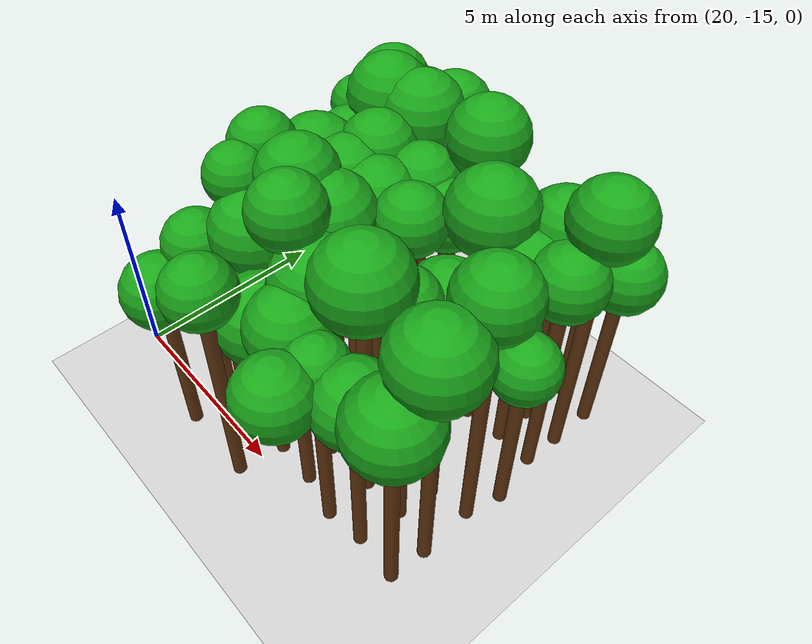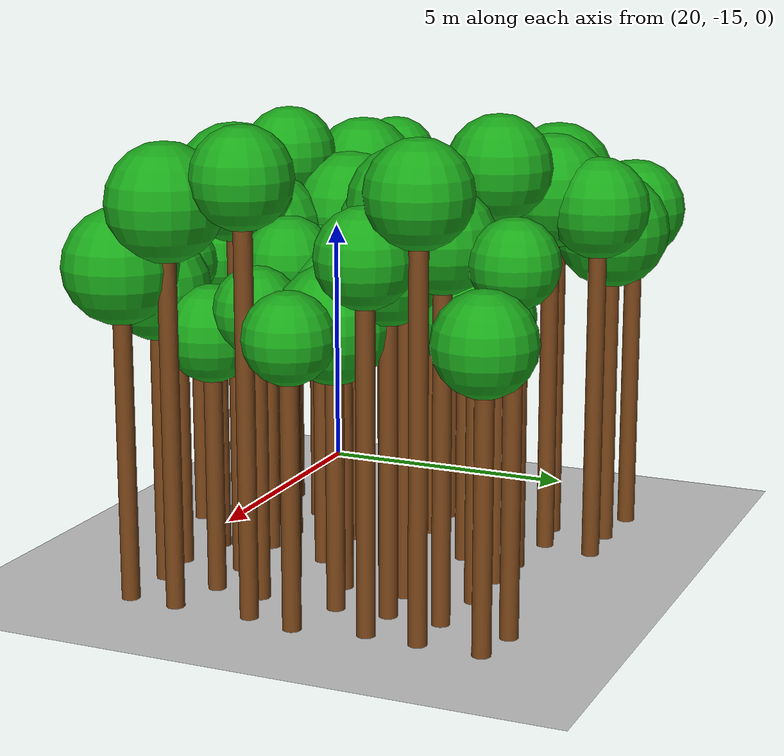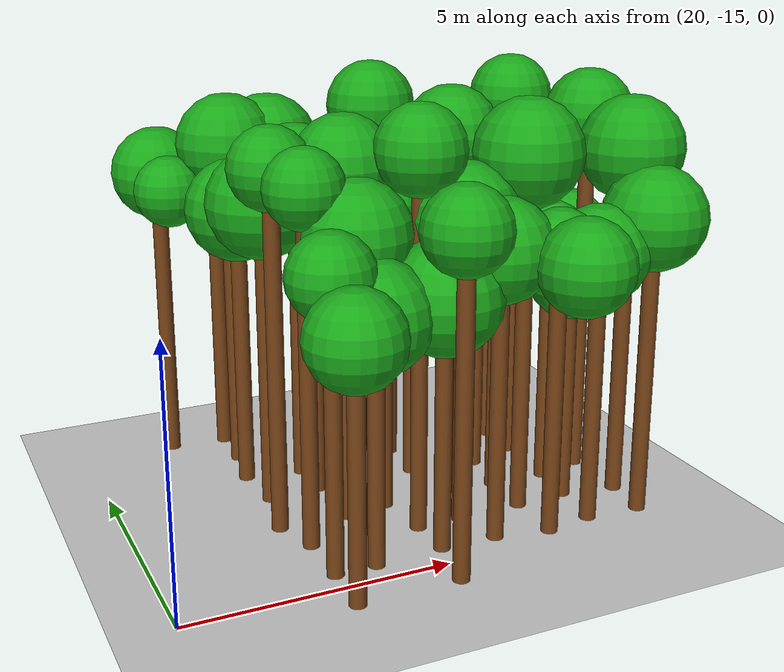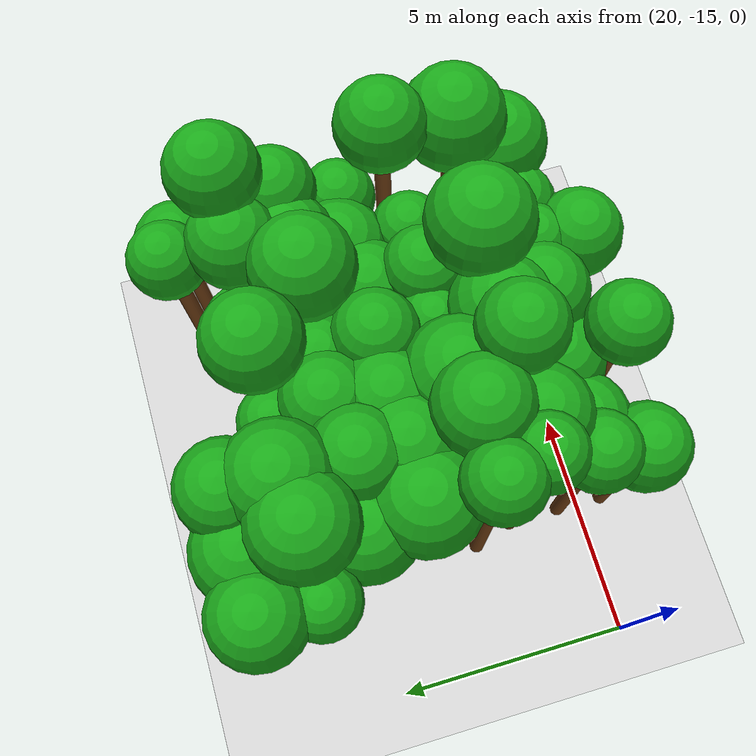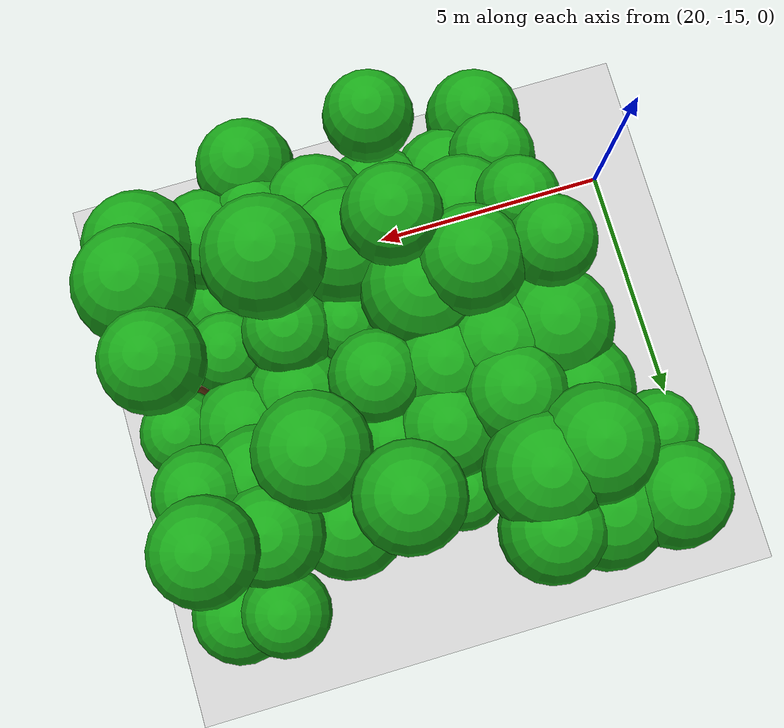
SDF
<sdf version="1.6">
 <world name="forest_world">
  <include><uri>model://sun</uri></include>
  <include><uri>model://ground_plane</uri></include>
  <model name="tree_2581_leaf">
   <static>true</static>
   <pose>21.78 -9.09 5.90 0 0 0</pose>
   <link name="link">
    <collision name="collision"><geometry><sphere><radius>0.70</radius></sphere></geometry></collision>
    <visual name="visual">
     <geometry><sphere><radius>0.70</radius></sphere></geometry>
     <material><ambient>0.05 0.45 0.05 1</ambient><diffuse>0.10 0.65 0.10 1</diffuse></material>
    </visual>
   </link>
  </model>
  <model name="tree_2582_trunk">
   <static>true</static>
   <pose>21.83 -8.01 2.76 0 0 0</pose>
   <link name="link">
    <collision name="collision">
     <geometry><cylinder><radius>0.16</radius><length>5.51</length></cylinder></geometry>
    </collision>
    <visual name="visual">
     <geometry><cylinder><radius>0.16</radius><length>5.51</length></cylinder></geometry>
     <material><ambient>0.35 0.20 0.05 1</ambient><diffuse>0.45 0.25 0.08 1</diffuse></material>
    </visual>
   </link>
  </model>
  <model name="tree_2582_leaf">
   <static>true</static>
   <pose>21.83 -8.01 6.07 0 0 0</pose>
   <link name="link">
    <collision name="collision"><geometry><sphere><radius>0.93</radius></sphere></geometry></collision>
    <visual name="visual">
     <geometry><sphere><radius>0.93</radius></sphere></geometry>
     <material><ambient>0.05 0.45 0.05 1</ambient><diffuse>0.10 0.65 0.10 1</diffuse></material>
    </visual>
   </link>
  </model>
  <model name="tree_2630_trunk">
   <static>true</static>
   <pose>22.96 -15.58 2.10 0 0 0</pose>
   <link name="link">
    <collision name="collision">
     <geometry><cylinder><radius>0.16</radius><length>4.20</length></cylinder></geometry>
    </collision>
    <visual name="visual">
     <geometry><cylinder><radius>0.16</radius><length>4.20</length></cylinder></geometry>
     <material><ambient>0.35 0.20 0.05 1</ambient><diffuse>0.45 0.25 0.08 1</diffuse></material>
    </visual>
   </link>
  </model>
  <model name="tree_2630_leaf">
   <static>true</static>
   <pose>22.96 -15.58 4.72 0 0 0</pose>
   <link name="link">
    <collision name="collision"><geometry><sphere><radius>0.88</radius></sphere></geometry></collision>
    <visual name="visual">
     <geometry><sphere><radius>0.88</radius></sphere></geometry>
     <material><ambient>0.05 0.45 0.05 1</ambient><diffuse>0.10 0.65 0.10 1</diffuse></material>
    </visual>
   </link>
  </model>
  <model name="tree_2631_trunk">
   <static>true</static>
   <pose>22.98 -14.53 2.50 0 0 0</pose>
   <link name="link">
    <collision name="collision">
     <geometry><cylinder><radius>0.16</radius><length>4.99</length></cylinder></geometry>
    </collision>
    <visual name="visual">
     <geometry><cylinder><radius>0.16</radius><length>4.99</length></cylinder></geometry>
     <material><ambient>0.35 0.20 0.05 1</ambient><diffuse>0.45 0.25 0.08 1</diffuse></material>
    </visual>
   </link>
  </model>
  <model name="tree_2631_leaf">
   <static>true</static>
   <pose>22.98 -14.53 5.47 0 0 0</pose>
   <link name="link">
    <collision name="collision"><geometry><sphere><radius>0.79</radius></sphere></geometry></collision>
    <visual name="visual">
     <geometry><sphere><radius>0.79</radius></sphere></geometry>
     <material><ambient>0.05 0.45 0.05 1</ambient><diffuse>0.10 0.65 0.10 1</diffuse></material>
    </visual>
   </link>
  </model>
  <model name="tree_2632_trunk">
   <static>true</static>
   <pose>22.98 -13.36 3.13 0 0 0</pose>
   <link name="link">
    <collision name="collision">
     <geometry><cylinder><radius>0.16</radius><length>6.26</length></cylinder></geometry>
    </collision>
    <visual name="visual">
     <geometry><cylinder><radius>0.16</radius><length>6.26</length></cylinder></geometry>
     <material><ambient>0.35 0.20 0.05 1</ambient><diffuse>0.45 0.25 0.08 1</diffuse></material>
    </visual>
   </link>
  </model>
  <model name="tree_2632_leaf">
   <static>true</static>
   <pose>22.98 -13.36 6.70 0 0 0</pose>
   <link name="link">
    <collision name="collision"><geometry><sphere><radius>0.73</radius></sphere></geometry></collision>
    <visual name="visual">
     <geometry><sphere><radius>0.73</radius></sphere></geometry>
     <material><ambient>0.05 0.45 0.05 1</ambient><diffuse>0.10 0.65 0.10 1</diffuse></material>
    </visual>
   </link>
  </model>
  <model name="tree_2633_trunk">
   <static>true</static>
   <pose>22.69 -12.48 3.22 0 0 0</pose>
   <link name="link">
    <collision name="collision">
     <geometry><cylinder><radius>0.16</radius><length>6.45</length></cylinder></geometry>
    </collision>
    <visual name="visual">
     <geometry><cylinder><radius>0.16</radius><length>6.45</length></cylinder></geometry>
     <material><ambient>0.35 0.20 0.05 1</ambient><diffuse>0.45 0.25 0.08 1</diffuse></material>
    </visual>
   </link>
  </model>
  <model name="tree_2633_leaf">
   <static>true</static>
   <pose>22.69 -12.48 6.91 0 0 0</pose>
   <link name="link">
    <collision name="collision"><geometry><sphere><radius>0.77</radius></sphere></geometry></collision>
    <visual name="visual">
     <geometry><sphere><radius>0.77</radius></sphere></geometry>
     <material><ambient>0.05 0.45 0.05 1</ambient><diffuse>0.10 0.65 0.10 1</diffuse></material>
    </visual>
   </link>
  </model>
  <model name="tree_2634_trunk">
   <static>true</static>
   <pose>22.93 -11.25 2.69 0 0 0</pose>
   <link name="link">
    <collision name="collision">
     <geometry><cylinder><radius>0.16</radius><length>5.38</length></cylinder></geometry>
    </collision>
    <visual name="visual">
     <geometry><cylinder><radius>0.16</radius><length>5.38</length></cylinder></geometry>
     <material><ambient>0.35 0.20 0.05 1</ambient><diffuse>0.45 0.25 0.08 1</diffuse></material>
    </visual>
   </link>
  </model>
  <model name="tree_2634_leaf">
   <static>true</static>
   <pose>22.93 -11.25 6.01 0 0 0</pose>
   <link name="link">
    <collision name="collision"><geometry><sphere><radius>1.05</radius></sphere></geometry></collision>
    <visual name="visual">
     <geometry><sphere><radius>1.05</radius></sphere></geometry>
     <material><ambient>0.05 0.45 0.05 1</ambient><diffuse>0.10 0.65 0.10 1</diffuse></material>
    </visual>
   </link>
  </model>
  <model name="tree_2635_trunk">
   <static>true</static>
   <pose>22.81 -10.13 2.53 0 0 0</pose>
   <link name="link">
    <collision name="collision">
     <geometry><cylinder><radius>0.16</radius><length>5.06</length></cylinder></geometry>
    </collision>
    <visual name="visual">
     <geometry><cylinder><radius>0.16</radius><length>5.06</length></cylinder></geometry>
     <material><ambient>0.35 0.20 0.05 1</ambient><diffuse>0.45 0.25 0.08 1</diffuse></material>
    </visual>
   </link>
  </model>
  <model name="tree_2635_leaf">
   <static>true</static>
   <pose>22.81 -10.13 5.67 0 0 0</pose>
   <link name="link">
    <collision name="collision"><geometry><sphere><radius>1.01</radius></sphere></geometry></collision>
    <visual name="visual">
     <geometry><sphere><radius>1.01</radius></sphere></geometry>
     <material><ambient>0.05 0.45 0.05 1</ambient><diffuse>0.10 0.65 0.10 1</diffuse></material>
    </visual>
   </link>
  </model>
  <model name="tree_2636_trunk">
   <static>true</static>
   <pose>22.96 -9.13 3.08 0 0 0</pose>
   <link name="link">
    <collision name="collision">
     <geometry><cylinder><radius>0.16</radius><length>6.16</length></cylinder></geometry>
    </collision>
    <visual name="visual">
     <geometry><cylinder><radius>0.16</radius><length>6.16</length></cylinder></geometry>
     <material><ambient>0.35 0.20 0.05 1</ambient><diffuse>0.45 0.25 0.08 1</diffuse></material>
    </visual>
   </link>
  </model>
  <model name="tree_2636_leaf">
   <static>true</static>
   <pose>22.96 -9.13 6.76 0 0 0</pose>
   <link name="link">
    <collision name="collision"><geometry><sphere><radius>1.00</radius></sphere></geometry></collision>
    <visual name="visual">
     <geometry><sphere><radius>1.00</radius></sphere></geometry>
     <material><ambient>0.05 0.45 0.05 1</ambient><diffuse>0.10 0.65 0.10 1</diffuse></material>
    </visual>
   </link>
  </model>
  <model name="tree_2637_trunk">
   <static>true</static>
   <pose>22.97 -8.09 2.62 0 0 0</pose>
   <link name="link">
    <collision name="collision">
     <geometry><cylinder><radius>0.16</radius><length>5.24</length></cylinder></geometry>
    </collision>
    <visual name="visual">
     <geometry><cylinder><radius>0.16</radius><length>5.24</length></cylinder></geometry>
     <material><ambient>0.35 0.20 0.05 1</ambient><diffuse>0.45 0.25 0.08 1</diffuse></material>
    </visual>
   </link>
  </model>
  <model name="tree_2637_leaf">
   <static>true</static>
   <pose>22.97 -8.09 5.86 0 0 0</pose>
   <link name="link">
    <collision name="collision"><geometry><sphere><radius>1.04</radius></sphere></geometry></collision>
    <visual name="visual">
     <geometry><sphere><radius>1.04</radius></sphere></geometry>
     <material><ambient>0.05 0.45 0.05 1</ambient><diffuse>0.10 0.65 0.10 1</diffuse></material>
    </visual>
   </link>
  </model>
  <model name="tree_2686_trunk">
   <static>true</static>
   <pose>23.78 -14.51 2.03 0 0 0</pose>
   <link name="link">
    <collision name="collision">
     <geometry><cylinder><radius>0.16</radius><length>4.06</length></cylinder></geometry>
    </collision>
    <visual name="visual">
     <geometry><cylinder><radius>0.16</radius><length>4.06</length></cylinder></geometry>
     <material><ambient>0.35 0.20 0.05 1</ambient><diffuse>0.45 0.25 0.08 1</diffuse></material>
    </visual>
   </link>
  </model>
  <model name="tree_2686_leaf">
   <static>true</static>
   <pose>23.78 -14.51 4.67 0 0 0</pose>
   <link name="link">
    <collision name="collision"><geometry><sphere><radius>1.03</radius></sphere></geometry></collision>
    <visual name="visual">
     <geometry><sphere><radius>1.03</radius></sphere></geometry>
     <material><ambient>0.05 0.45 0.05 1</ambient><diffuse>0.10 0.65 0.10 1</diffuse></material>
    </visual>
   </link>
  </model>
  <model name="tree_2687_trunk">
   <static>true</static>
   <pose>23.83 -13.61 2.63 0 0 0</pose>
   <link name="link">
    <collision name="collision">
     <geometry><cylinder><radius>0.16</radius><length>5.27</length></cylinder></geometry>
    </collision>
    <visual name="visual">
     <geometry><cylinder><radius>0.16</radius><length>5.27</length></cylinder></geometry>
     <material><ambient>0.35 0.20 0.05 1</ambient><diffuse>0.45 0.25 0.08 1</diffuse></material>
    </visual>
   </link>
  </model>
  <model name="tree_2687_leaf">
   <static>true</static>
   <pose>23.83 -13.61 5.87 0 0 0</pose>
   <link name="link">
    <collision name="collision"><geometry><sphere><radius>1.00</radius></sphere></geometry></collision>
    <visual name="visual">
     <geometry><sphere><radius>1.00</radius></sphere></geometry>
     <material><ambient>0.05 0.45 0.05 1</ambient><diffuse>0.10 0.65 0.10 1</diffuse></material>
    </visual>
   </link>
  </model>
  <model name="tree_2688_trunk">
   <static>true</static>
   <pose>24.03 -12.55 3.16 0 0 0</pose>
   <link name="link">
    <collision name="collision">
     <geometry><cylinder><radius>0.16</radius><length>6.32</length></cylinder></geometry>
    </collision>
    <visual name="visual">
     <geometry><cylinder><radius>0.16</radius><length>6.32</length></cylinder></geometry>
     <material><ambient>0.35 0.20 0.05 1</ambient><diffuse>0.45 0.25 0.08 1</diffuse></material>
    </visual>
   </link>
  </model>
  <model name="tree_2688_leaf">
   <static>true</static>
   <pose>24.03 -12.55 6.88 0 0 0</pose>
   <link name="link">
    <collision name="collision"><geometry><sphere><radius>0.93</radius></sphere></geometry></collision>
    <visual name="visual">
     <geometry><sphere><radius>0.93</radius></sphere></geometry>
     <material><ambient>0.05 0.45 0.05 1</ambient><diffuse>0.10 0.65 0.10 1</diffuse></material>
    </visual>
   </link>
  </model>
  <model name="tree_2689_trunk">
   <static>true</static>
   <pose>23.96 -11.21 2.75 0 0 0</pose>
   <link name="link">
    <collision name="collision">
     <geometry><cylinder><radius>0.16</radius><length>5.50</length></cylinder></geometry>
    </collision>
    <visual name="visual">
     <geometry><cylinder><radius>0.16</radius><length>5.50</length></cylinder></geometry>
     <material><ambient>0.35 0.20 0.05 1</ambient><diffuse>0.45 0.25 0.08 1</diffuse></material>
    </visual>
   </link>
  </model>
  <model name="tree_2689_leaf">
   <static>true</static>
   <pose>23.96 -11.21 6.09 0 0 0</pose>
   <link name="link">
    <collision name="collision"><geometry><sphere><radius>0.98</radius></sphere></geometry></collision>
    <visual name="visual">
     <geometry><sphere><radius>0.98</radius></sphere></geometry>
     <material><ambient>0.05 0.45 0.05 1</ambient><diffuse>0.10 0.65 0.10 1</diffuse></material>
    </visual>
   </link>
  </model>
  <model name="tree_2690_trunk">
   <static>true</static>
   <pose>23.94 -10.31 2.92 0 0 0</pose>
   <link name="link">
    <collision name="collision">
     <geometry><cylinder><radius>0.16</radius><length>5.85</length></cylinder></geometry>
    </collision>
    <visual name="visual">
     <geometry><cylinder><radius>0.16</radius><length>5.85</length></cylinder></geometry>
     <material><ambient>0.35 0.20 0.05 1</ambient><diffuse>0.45 0.25 0.08 1</diffuse></material>
    </visual>
   </link>
  </model>
  <model name="tree_2690_leaf">
   <static>true</static>
   <pose>23.94 -10.31 6.39 0 0 0</pose>
   <link name="link">
    <collision name="collision"><geometry><sphere><radius>0.90</radius></sphere></geometry></collision>
    <visual name="visual">
     <geometry><sphere><radius>0.90</radius></sphere></geometry>
     <material><ambient>0.05 0.45 0.05 1</ambient><diffuse>0.10 0.65 0.10 1</diffuse></material>
    </visual>
   </link>
  </model>
  <model name="tree_2691_trunk">
   <static>true</static>
   <pose>23.87 -8.95 3.03 0 0 0</pose>
   <link name="link">
    <collision name="collision">
     <geometry><cylinder><radius>0.16</radius><length>6.05</length></cylinder></geometry>
    </collision>
    <visual name="visual">
     <geometry><cylinder><radius>0.16</radius><length>6.05</length></cylinder></geometry>
     <material><ambient>0.35 0.20 0.05 1</ambient><diffuse>0.45 0.25 0.08 1</diffuse></material>
    </visual>
   </link>
  </model>
  <model name="tree_2691_leaf">
   <static>true</static>
   <pose>23.87 -8.95 6.66 0 0 0</pose>
   <link name="link">
    <collision name="collision"><geometry><sphere><radius>1.02</radius></sphere></geometry></collision>
    <visual name="visual">
     <geometry><sphere><radius>1.02</radius></sphere></geometry>
     <material><ambient>0.05 0.45 0.05 1</ambient><diffuse>0.10 0.65 0.10 1</diffuse></material>
    </visual>
   </link>
  </model>
  <model name="tree_2692_trunk">
   <static>true</static>
   <pose>23.99 -8.03 2.94 0 0 0</pose>
   <link name="link">
    <collision name="collision">
     <geometry><cylinder><radius>0.16</radius><length>5.89</length></cylinder></geometry>
    </collision>
    <visual name="visual">
     <geometry><cylinder><radius>0.16</radius><length>5.89</length></cylinder></geometry>
     <material><ambient>0.35 0.20 0.05 1</ambient><diffuse>0.45 0.25 0.08 1</diffuse></material>
    </visual>
   </link>
  </model>
  <model name="tree_2692_leaf">
   <static>true</static>
   <pose>23.99 -8.03 6.42 0 0 0</pose>
   <link name="link">
    <collision name="collision"><geometry><sphere><radius>0.90</radius></sphere></geometry></collision>
    <visual name="visual">
     <geometry><sphere><radius>0.90</radius></sphere></geometry>
     <material><ambient>0.05 0.45 0.05 1</ambient><diffuse>0.10 0.65 0.10 1</diffuse></material>
    </visual>
   </link>
  </model>
  <model name="tree_2740_trunk">
   <static>true</static>
   <pose>24.92 -15.58 2.91 0 0 0</pose>
   <link name="link">
    <collision name="collision">
     <geometry><cylinder><radius>0.16</radius><length>5.82</length></cylinder></geometry>
    </collision>
    <visual name="visual">
     <geometry><cylinder><radius>0.16</radius><length>5.82</length></cylinder></geometry>
     <material><ambient>0.35 0.20 0.05 1</ambient><diffuse>0.45 0.25 0.08 1</diffuse></material>
    </visual>
   </link>
  </model>
  <model name="tree_2740_leaf">
   <static>true</static>
   <pose>24.92 -15.58 6.29 0 0 0</pose>
   <link name="link">
    <collision name="collision"><geometry><sphere><radius>0.79</radius></sphere></geometry></collision>
    <visual name="visual">
     <geometry><sphere><radius>0.79</radius></sphere></geometry>
     <material><ambient>0.05 0.45 0.05 1</ambient><diffuse>0.10 0.65 0.10 1</diffuse></material>
    </visual>
   </link>
  </model>
  <model name="tree_2741_trunk">
   <static>true</static>
   <pose>25.12 -14.44 2.09 0 0 0</pose>
   <link name="link">
    <collision name="collision">
     <geometry><cylinder><radius>0.16</radius><length>4.19</length></cylinder></geometry>
    </collision>
    <visual name="visual">
     <geometry><cylinder><radius>0.16</radius><length>4.19</length></cylinder></geometry>
     <material><ambient>0.35 0.20 0.05 1</ambient><diffuse>0.45 0.25 0.08 1</diffuse></material>
    </visual>
   </link>
  </model>
  <model name="tree_2741_leaf">
   <static>true</static>
   <pose>25.12 -14.44 4.82 0 0 0</pose>
   <link name="link">
    <collision name="collision"><geometry><sphere><radius>1.06</radius></sphere></geometry></collision>
    <visual name="visual">
     <geometry><sphere><radius>1.06</radius></sphere></geometry>
     <material><ambient>0.05 0.45 0.05 1</ambient><diffuse>0.10 0.65 0.10 1</diffuse></material>
    </visual>
   </link>
  </model>
  <model name="tree_2742_trunk">
   <static>true</static>
   <pose>25.07 -13.55 3.36 0 0 0</pose>
   <link name="link">
    <collision name="collision">
     <geometry><cylinder><radius>0.16</radius><length>6.72</length></cylinder></geometry>
    </collision>
    <visual name="visual">
     <geometry><cylinder><radius>0.16</radius><length>6.72</length></cylinder></geometry>
     <material><ambient>0.35 0.20 0.05 1</ambient><diffuse>0.45 0.25 0.08 1</diffuse></material>
    </visual>
   </link>
  </model>
  <model name="tree_2742_leaf">
   <static>true</static>
   <pose>25.07 -13.55 7.23 0 0 0</pose>
   <link name="link">
    <collision name="collision"><geometry><sphere><radius>0.84</radius></sphere></geometry></collision>
    <visual name="visual">
     <geometry><sphere><radius>0.84</radius></sphere></geometry>
     <material><ambient>0.05 0.45 0.05 1</ambient><diffuse>0.10 0.65 0.10 1</diffuse></material>
    </visual>
   </link>
  </model>
  <model name="tree_2743_trunk">
   <static>true</static>
   <pose>24.88 -12.42 2.80 0 0 0</pose>
   <link name="link">
    <collision name="collision">
     <geometry><cylinder><radius>0.16</radius><length>5.61</length></cylinder></geometry>
    </collision>
    <visual name="visual">
     <geometry><cylinder><radius>0.16</radius><length>5.61</length></cylinder></geometry>
     <material><ambient>0.35 0.20 0.05 1</ambient><diffuse>0.45 0.25 0.08 1</diffuse></material>
    </visual>
   </link>
  </model>
  <model name="tree_2743_leaf">
   <static>true</static>
   <pose>24.88 -12.42 6.24 0 0 0</pose>
   <link name="link">
    <collision name="collision"><geometry><sphere><radius>1.06</radius></sphere></geometry></collision>
    <visual name="visual">
     <geometry><sphere><radius>1.06</radius></sphere></geometry>
     <material><ambient>0.05 0.45 0.05 1</ambient><diffuse>0.10 0.65 0.10 1</diffuse></material>
    </visual>
   </link>
  </model>
  <model name="tree_2744_trunk">
   <static>true</static>
   <pose>24.88 -11.12 2.73 0 0 0</pose>
   <link name="link">
    <collision name="collision">
     <geometry><cylinder><radius>0.16</radius><length>5.46</length></cylinder></geometry>
    </collision>
    <visual name="visual">
     <geometry><cylinder><radius>0.16</radius><length>5.46</length></cylinder></geometry>
     <material><ambient>0.35 0.20 0.05 1</ambient><diffuse>0.45 0.25 0.08 1</diffuse></material>
    </visual>
   </link>
  </model>
  <model name="tree_2744_leaf">
   <static>true</static>
   <pose>24.88 -11.12 6.03 0 0 0</pose>
   <link name="link">
    <collision name="collision"><geometry><sphere><radius>0.95</radius></sphere></geometry></collision>
    <visual name="visual">
     <geometry><sphere><radius>0.95</radius></sphere></geometry>
     <material><ambient>0.05 0.45 0.05 1</ambient><diffuse>0.10 0.65 0.10 1</diffuse></material>
    </visual>
   </link>
  </model>
  <model name="tree_2745_trunk">
   <static>true</static>
   <pose>25.12 -10.08 2.77 0 0 0</pose>
   <link name="link">
    <collision name="collision">
     <geometry><cylinder><radius>0.16</radius><length>5.55</length></cylinder></geometry>
    </collision>
    <visual name="visual">
     <geometry><cylinder><radius>0.16</radius><length>5.55</length></cylinder></geometry>
     <material><ambient>0.35 0.20 0.05 1</ambient><diffuse>0.45 0.25 0.08 1</diffuse></material>
    </visual>
   </link>
  </model>
  <model name="tree_2745_leaf">
   <static>true</static>
   <pose>25.12 -10.08 6.08 0 0 0</pose>
   <link name="link">
    <collision name="collision"><geometry><sphere><radius>0.89</radius></sphere></geometry></collision>
    <visual name="visual">
     <geometry><sphere><radius>0.89</radius></sphere></geometry>
     <material><ambient>0.05 0.45 0.05 1</ambient><diffuse>0.10 0.65 0.10 1</diffuse></material>
    </visual>
   </link>
  </model>
  <model name="tree_2746_trunk">
   <static>true</static>
   <pose>25.14 -9.07 2.57 0 0 0</pose>
   <link name="link">
    <collision name="collision">
     <geometry><cylinder><radius>0.16</radius><length>5.13</length></cylinder></geometry>
    </collision>
    <visual name="visual">
     <geometry><cylinder><radius>0.16</radius><length>5.13</length></cylinder></geometry>
     <material><ambient>0.35 0.20 0.05 1</ambient><diffuse>0.45 0.25 0.08 1</diffuse></material>
    </visual>
   </link>
  </model>
  <model name="tree_2746_leaf">
   <static>true</static>
   <pose>25.14 -9.07 5.56 0 0 0</pose>
   <link name="link">
    <collision name="collision"><geometry><sphere><radius>0.71</radius></sphere></geometry></collision>
    <visual name="visual">
     <geometry><sphere><radius>0.71</radius></sphere></geometry>
     <material><ambient>0.05 0.45 0.05 1</ambient><diffuse>0.10 0.65 0.10 1</diffuse></material>
    </visual>
   </link>
  </model>
  <model name="tree_2796_trunk">
   <static>true</static>
   <pose>26.21 -14.47 2.48 0 0 0</pose>
   <link name="link">
    <collision name="collision">
     <geometry><cylinder><radius>0.16</radius><length>4.97</length></cylinder></geometry>
    </collision>
    <visual name="visual">
     <geometry><cylinder><radius>0.16</radius><length>4.97</length></cylinder></geometry>
     <material><ambient>0.35 0.20 0.05 1</ambient><diffuse>0.45 0.25 0.08 1</diffuse></material>
    </visual>
   </link>
  </model>
  <model name="tree_2796_leaf">
   <static>true</static>
   <pose>26.21 -14.47 5.54 0 0 0</pose>
   <link name="link">
    <collision name="collision"><geometry><sphere><radius>0.96</radius></sphere></geometry></collision>
    <visual name="visual">
     <geometry><sphere><radius>0.96</radius></sphere></geometry>
     <material><ambient>0.05 0.45 0.05 1</ambient><diffuse>0.10 0.65 0.10 1</diffuse></material>
    </visual>
   </link>
  </model>
  <model name="tree_2797_trunk">
   <static>true</static>
   <pose>25.94 -13.58 2.68 0 0 0</pose>
   <link name="link">
    <collision name="collision">
     <geometry><cylinder><radius>0.16</radius><length>5.36</length></cylinder></geometry>
    </collision>
    <visual name="visual">
     <geometry><cylinder><radius>0.16</radius><length>5.36</length></cylinder></geometry>
     <material><ambient>0.35 0.20 0.05 1</ambient><diffuse>0.45 0.25 0.08 1</diffuse></material>
    </visual>
   </link>
  </model>
  <model name="tree_2797_leaf">
   <static>true</static>
   <pose>25.94 -13.58 5.97 0 0 0</pose>
   <link name="link">
    <collision name="collision"><geometry><sphere><radius>1.02</radius></sphere></geometry></collision>
    <visual name="visual">
     <geometry><sphere><radius>1.02</radius></sphere></geometry>
     <material><ambient>0.05 0.45 0.05 1</ambient><diffuse>0.10 0.65 0.10 1</diffuse></material>
    </visual>
   </link>
  </model>
  <model name="tree_2798_trunk">
   <static>true</static>
   <pose>26.25 -12.37 2.52 0 0 0</pose>
   <link name="link">
    <collision name="collision">
     <geometry><cylinder><radius>0.16</radius><length>5.05</length></cylinder></geometry>
    </collision>
    <visual name="visual">
     <geometry><cylinder><radius>0.16</radius><length>5.05</length></cylinder></geometry>
     <material><ambient>0.35 0.20 0.05 1</ambient><diffuse>0.45 0.25 0.08 1</diffuse></material>
    </visual>
   </link>
  </model>
  <model name="tree_2798_leaf">
   <static>true</static>
   <pose>26.25 -12.37 5.47 0 0 0</pose>
   <link name="link">
    <collision name="collision"><geometry><sphere><radius>0.70</radius></sphere></geometry></collision>
    <visual name="visual">
     <geometry><sphere><radius>0.70</radius></sphere></geometry>
     <material><ambient>0.05 0.45 0.05 1</ambient><diffuse>0.10 0.65 0.10 1</diffuse></material>
    </visual>
   </link>
  </model>
  <model name="tree_2799_trunk">
   <static>true</static>
   <pose>26.02 -11.22 2.88 0 0 0</pose>
   <link name="link">
    <collision name="collision">
     <geometry><cylinder><radius>0.16</radius><length>5.76</length></cylinder></geometry>
    </collision>
    <visual name="visual">
     <geometry><cylinder><radius>0.16</radius><length>5.76</length></cylinder></geometry>
     <material><ambient>0.35 0.20 0.05 1</ambient><diffuse>0.45 0.25 0.08 1</diffuse></material>
    </visual>
   </link>
  </model>
  <model name="tree_2799_leaf">
   <static>true</static>
   <pose>26.02 -11.22 6.25 0 0 0</pose>
   <link name="link">
    <collision name="collision"><geometry><sphere><radius>0.82</radius></sphere></geometry></collision>
    <visual name="visual">
     <geometry><sphere><radius>0.82</radius></sphere></geometry>
     <material><ambient>0.05 0.45 0.05 1</ambient><diffuse>0.10 0.65 0.10 1</diffuse></material>
    </visual>
   </link>
  </model>
  <model name="tree_2800_trunk">
   <static>true</static>
   <pose>26.02 -10.15 2.62 0 0 0</pose>
   <link name="link">
    <collision name="collision">
     <geometry><cylinder><radius>0.16</radius><length>5.24</length></cylinder></geometry>
    </collision>
    <visual name="visual">
     <geometry><cylinder><radius>0.16</radius><length>5.24</length></cylinder></geometry>
     <material><ambient>0.35 0.20 0.05 1</ambient><diffuse>0.45 0.25 0.08 1</diffuse></material>
    </visual>
   </link>
  </model>
  <model name="tree_2800_leaf">
   <static>true</static>
   <pose>26.02 -10.15 5.75 0 0 0</pose>
   <link name="link">
    <collision name="collision"><geometry><sphere><radius>0.84</radius></sphere></geometry></collision>
    <visual name="visual">
     <geometry><sphere><radius>0.84</radius></sphere></geometry>
     <material><ambient>0.05 0.45 0.05 1</ambient><diffuse>0.10 0.65 0.10 1</diffuse></material>
    </visual>
   </link>
  </model>
  <model name="tree_2801_trunk">
   <static>true</static>
   <pose>26.06 -9.14 3.40 0 0 0</pose>
   <link name="link">
    <collision name="collision">
     <geometry><cylinder><radius>0.16</radius><length>6.80</length></cylinder></geometry>
    </collision>
    <visual name="visual">
     <geometry><cylinder><radius>0.16</radius><length>6.80</length></cylinder></geometry>
     <material><ambient>0.35 0.20 0.05 1</ambient><diffuse>0.45 0.25 0.08 1</diffuse></material>
    </visual>
   </link>
  </model>
  <model name="tree_2801_leaf">
   <static>true</static>
   <pose>26.06 -9.14 7.34 0 0 0</pose>
   <link name="link">
    <collision name="collision"><geometry><sphere><radius>0.91</radius></sphere></geometry></collision>
    <visual name="visual">
     <geometry><sphere><radius>0.91</radius></sphere></geometry>
     <material><ambient>0.05 0.45 0.05 1</ambient><diffuse>0.10 0.65 0.10 1</diffuse></material>
    </visual>
   </link>
  </model>
  <model name="tree_2850_leaf">
   <static>true</static>
   <pose>27.22 -15.59 5.40 0 0 0</pose>
   <link name="link">
    <collision name="collision"><geometry><sphere><radius>0.88</radius></sphere></geometry></collision>
    <visual name="visual">
     <geometry><sphere><radius>0.88</radius></sphere></geometry>
     <material><ambient>0.05 0.45 0.05 1</ambient><diffuse>0.10 0.65 0.10 1</diffuse></material>
    </visual>
   </link>
  </model>
  <model name="tree_2851_trunk">
   <static>true</static>
   <pose>27.26 -14.68 2.55 0 0 0</pose>
   <link name="link">
    <collision name="collision">
     <geometry><cylinder><radius>0.16</radius><length>5.10</length></cylinder></geometry>
    </collision>
    <visual name="visual">
     <geometry><cylinder><radius>0.16</radius><length>5.10</length></cylinder></geometry>
     <material><ambient>0.35 0.20 0.05 1</ambient><diffuse>0.45 0.25 0.08 1</diffuse></material>
    </visual>
   </link>
  </model>
  <model name="tree_2851_leaf">
   <static>true</static>
   <pose>27.26 -14.68 5.53 0 0 0</pose>
   <link name="link">
    <collision name="collision"><geometry><sphere><radius>0.71</radius></sphere></geometry></collision>
    <visual name="visual">
     <geometry><sphere><radius>0.71</radius></sphere></geometry>
     <material><ambient>0.05 0.45 0.05 1</ambient><diffuse>0.10 0.65 0.10 1</diffuse></material>
    </visual>
   </link>
  </model>
  <model name="tree_2852_trunk">
   <static>true</static>
   <pose>27.25 -13.52 3.19 0 0 0</pose>
   <link name="link">
    <collision name="collision">
     <geometry><cylinder><radius>0.16</radius><length>6.38</length></cylinder></geometry>
    </collision>
    <visual name="visual">
     <geometry><cylinder><radius>0.16</radius><length>6.38</length></cylinder></geometry>
     <material><ambient>0.35 0.20 0.05 1</ambient><diffuse>0.45 0.25 0.08 1</diffuse></material>
    </visual>
   </link>
  </model>
  <model name="tree_2852_leaf">
   <static>true</static>
   <pose>27.25 -13.52 7.00 0 0 0</pose>
   <link name="link">
    <collision name="collision"><geometry><sphere><radius>1.03</radius></sphere></geometry></collision>
    <visual name="visual">
     <geometry><sphere><radius>1.03</radius></sphere></geometry>
     <material><ambient>0.05 0.45 0.05 1</ambient><diffuse>0.10 0.65 0.10 1</diffuse></material>
    </visual>
   </link>
  </model>
  <model name="tree_2853_trunk">
   <static>true</static>
   <pose>27.25 -12.50 2.59 0 0 0</pose>
   <link name="link">
    <collision name="collision">
     <geometry><cylinder><radius>0.16</radius><length>5.18</length></cylinder></geometry>
    </collision>
    <visual name="visual">
     <geometry><cylinder><radius>0.16</radius><length>5.18</length></cylinder></geometry>
     <material><ambient>0.35 0.20 0.05 1</ambient><diffuse>0.45 0.25 0.08 1</diffuse></material>
    </visual>
   </link>
  </model>
  <model name="tree_2853_leaf">
   <static>true</static>
   <pose>27.25 -12.50 5.67 0 0 0</pose>
   <link name="link">
    <collision name="collision"><geometry><sphere><radius>0.81</radius></sphere></geometry></collision>
    <visual name="visual">
     <geometry><sphere><radius>0.81</radius></sphere></geometry>
     <material><ambient>0.05 0.45 0.05 1</ambient><diffuse>0.10 0.65 0.10 1</diffuse></material>
    </visual>
   </link>
  </model>
  <model name="tree_2854_trunk">
   <static>true</static>
   <pose>27.38 -11.43 2.26 0 0 0</pose>
   <link name="link">
    <collision name="collision">
     <geometry><cylinder><radius>0.16</radius><length>4.51</length></cylinder></geometry>
    </collision>
    <visual name="visual">
     <geometry><cylinder><radius>0.16</radius><length>4.51</length></cylinder></geometry>
     <material><ambient>0.35 0.20 0.05 1</ambient><diffuse>0.45 0.25 0.08 1</diffuse></material>
    </visual>
   </link>
  </model>
  <model name="tree_2854_leaf">
   <static>true</static>
   <pose>27.38 -11.43 5.09 0 0 0</pose>
   <link name="link">
    <collision name="collision"><geometry><sphere><radius>0.96</radius></sphere></geometry></collision>
    <visual name="visual">
     <geometry><sphere><radius>0.96</radius></sphere></geometry>
     <material><ambient>0.05 0.45 0.05 1</ambient><diffuse>0.10 0.65 0.10 1</diffuse></material>
    </visual>
   </link>
  </model>
  <model name="tree_2855_trunk">
   <static>true</static>
   <pose>27.35 -10.29 3.12 0 0 0</pose>
   <link name="link">
    <collision name="collision">
     <geometry><cylinder><radius>0.16</radius><length>6.25</length></cylinder></geometry>
    </collision>
    <visual name="visual">
     <geometry><cylinder><radius>0.16</radius><length>6.25</length></cylinder></geometry>
     <material><ambient>0.35 0.20 0.05 1</ambient><diffuse>0.45 0.25 0.08 1</diffuse></material>
    </visual>
   </link>
  </model>
  <model name="tree_2855_leaf">
   <static>true</static>
   <pose>27.35 -10.29 6.84 0 0 0</pose>
   <link name="link">
    <collision name="collision"><geometry><sphere><radius>0.99</radius></sphere></geometry></collision>
    <visual name="visual">
     <geometry><sphere><radius>0.99</radius></sphere></geometry>
     <material><ambient>0.05 0.45 0.05 1</ambient><diffuse>0.10 0.65 0.10 1</diffuse></material>
    </visual>
   </link>
  </model>
  <model name="tree_2856_trunk">
   <static>true</static>
   <pose>27.16 -9.10 2.21 0 0 0</pose>
   <link name="link">
    <collision name="collision">
     <geometry><cylinder><radius>0.16</radius><length>4.41</length></cylinder></geometry>
    </collision>
    <visual name="visual">
     <geometry><cylinder><radius>0.16</radius><length>4.41</length></cylinder></geometry>
     <material><ambient>0.35 0.20 0.05 1</ambient><diffuse>0.45 0.25 0.08 1</diffuse></material>
    </visual>
   </link>
  </model>
  <model name="tree_2856_leaf">
   <static>true</static>
   <pose>27.16 -9.10 5.02 0 0 0</pose>
   <link name="link">
    <collision name="collision"><geometry><sphere><radius>1.01</radius></sphere></geometry></collision>
    <visual name="visual">
     <geometry><sphere><radius>1.01</radius></sphere></geometry>
     <material><ambient>0.05 0.45 0.05 1</ambient><diffuse>0.10 0.65 0.10 1</diffuse></material>
    </visual>
   </link>
  </model>
  <model name="tree_2906_trunk">
   <static>true</static>
   <pose>28.20 -14.54 2.36 0 0 0</pose>
   <link name="link">
    <collision name="collision">
     <geometry><cylinder><radius>0.16</radius><length>4.71</length></cylinder></geometry>
    </collision>
    <visual name="visual">
     <geometry><cylinder><radius>0.16</radius><length>4.71</length></cylinder></geometry>
     <material><ambient>0.35 0.20 0.05 1</ambient><diffuse>0.45 0.25 0.08 1</diffuse></material>
    </visual>
   </link>
  </model>
  <model name="tree_2906_leaf">
   <static>true</static>
   <pose>28.20 -14.54 5.26 0 0 0</pose>
   <link name="link">
    <collision name="collision"><geometry><sphere><radius>0.92</radius></sphere></geometry></collision>
    <visual name="visual">
     <geometry><sphere><radius>0.92</radius></sphere></geometry>
     <material><ambient>0.05 0.45 0.05 1</ambient><diffuse>0.10 0.65 0.10 1</diffuse></material>
    </visual>
   </link>
  </model>
  <model name="tree_2907_trunk">
   <static>true</static>
   <pose>28.30 -13.45 2.03 0 0 0</pose>
   <link name="link">
    <collision name="collision">
     <geometry><cylinder><radius>0.16</radius><length>4.06</length></cylinder></geometry>
    </collision>
    <visual name="visual">
     <geometry><cylinder><radius>0.16</radius><length>4.06</length></cylinder></geometry>
     <material><ambient>0.35 0.20 0.05 1</ambient><diffuse>0.45 0.25 0.08 1</diffuse></material>
    </visual>
   </link>
  </model>
  <model name="tree_2907_leaf">
   <static>true</static>
   <pose>28.30 -13.45 4.57 0 0 0</pose>
   <link name="link">
    <collision name="collision"><geometry><sphere><radius>0.84</radius></sphere></geometry></collision>
    <visual name="visual">
     <geometry><sphere><radius>0.84</radius></sphere></geometry>
     <material><ambient>0.05 0.45 0.05 1</ambient><diffuse>0.10 0.65 0.10 1</diffuse></material>
    </visual>
   </link>
  </model>
  <model name="tree_2908_trunk">
   <static>true</static>
   <pose>28.39 -12.54 2.30 0 0 0</pose>
   <link name="link">
    <collision name="collision">
     <geometry><cylinder><radius>0.16</radius><length>4.60</length></cylinder></geometry>
    </collision>
    <visual name="visual">
     <geometry><cylinder><radius>0.16</radius><length>4.60</length></cylinder></geometry>
     <material><ambient>0.35 0.20 0.05 1</ambient><diffuse>0.45 0.25 0.08 1</diffuse></material>
    </visual>
   </link>
  </model>
  <model name="tree_2908_leaf">
   <static>true</static>
   <pose>28.39 -12.54 5.06 0 0 0</pose>
   <link name="link">
    <collision name="collision"><geometry><sphere><radius>0.75</radius></sphere></geometry></collision>
    <visual name="visual">
     <geometry><sphere><radius>0.75</radius></sphere></geometry>
     <material><ambient>0.05 0.45 0.05 1</ambient><diffuse>0.10 0.65 0.10 1</diffuse></material>
    </visual>
   </link>
  </model>
  <model name="tree_2909_trunk">
   <static>true</static>
   <pose>28.39 -11.12 2.18 0 0 0</pose>
   <link name="link">
    <collision name="collision">
     <geometry><cylinder><radius>0.16</radius><length>4.35</length></cylinder></geometry>
    </collision>
    <visual name="visual">
     <geometry><cylinder><radius>0.16</radius><length>4.35</length></cylinder></geometry>
     <material><ambient>0.35 0.20 0.05 1</ambient><diffuse>0.45 0.25 0.08 1</diffuse></material>
    </visual>
   </link>
  </model>
  <model name="tree_2909_leaf">
   <static>true</static>
   <pose>28.39 -11.12 4.96 0 0 0</pose>
   <link name="link">
    <collision name="collision"><geometry><sphere><radius>1.01</radius></sphere></geometry></collision>
    <visual name="visual">
     <geometry><sphere><radius>1.01</radius></sphere></geometry>
     <material><ambient>0.05 0.45 0.05 1</ambient><diffuse>0.10 0.65 0.10 1</diffuse></material>
    </visual>
   </link>
  </model>
  <model name="tree_2910_trunk">
   <static>true</static>
   <pose>28.35 -10.17 2.69 0 0 0</pose>
   <link name="link">
    <collision name="collision">
     <geometry><cylinder><radius>0.16</radius><length>5.38</length></cylinder></geometry>
    </collision>
    <visual name="visual">
     <geometry><cylinder><radius>0.16</radius><length>5.38</length></cylinder></geometry>
     <material><ambient>0.35 0.20 0.05 1</ambient><diffuse>0.45 0.25 0.08 1</diffuse></material>
    </visual>
   </link>
  </model>
  <model name="tree_2910_leaf">
   <static>true</static>
   <pose>28.35 -10.17 5.94 0 0 0</pose>
   <link name="link">
    <collision name="collision"><geometry><sphere><radius>0.93</radius></sphere></geometry></collision>
    <visual name="visual">
     <geometry><sphere><radius>0.93</radius></sphere></geometry>
     <material><ambient>0.05 0.45 0.05 1</ambient><diffuse>0.10 0.65 0.10 1</diffuse></material>
    </visual>
   </link>
  </model>
  <model name="tree_2911_trunk">
   <static>true</static>
   <pose>28.35 -9.22 2.98 0 0 0</pose>
   <link name="link">
    <collision name="collision">
     <geometry><cylinder><radius>0.16</radius><length>5.95</length></cylinder></geometry>
    </collision>
    <visual name="visual">
     <geometry><cylinder><radius>0.16</radius><length>5.95</length></cylinder></geometry>
     <material><ambient>0.35 0.20 0.05 1</ambient><diffuse>0.45 0.25 0.08 1</diffuse></material>
    </visual>
   </link>
  </model>
  <model name="tree_2911_leaf">
   <static>true</static>
   <pose>28.35 -9.22 6.48 0 0 0</pose>
   <link name="link">
    <collision name="collision"><geometry><sphere><radius>0.88</radius></sphere></geometry></collision>
    <visual name="visual">
     <geometry><sphere><radius>0.88</radius></sphere></geometry>
     <material><ambient>0.05 0.45 0.05 1</ambient><diffuse>0.10 0.65 0.10 1</diffuse></material>
    </visual>
   </link>
  </model>
  <model name="tree_2912_trunk">
   <static>true</static>
   <pose>28.47 -7.97 2.89 0 0 0</pose>
   <link name="link">
    <collision name="collision">
     <geometry><cylinder><radius>0.16</radius><length>5.77</length></cylinder></geometry>
    </collision>
    <visual name="visual">
     <geometry><cylinder><radius>0.16</radius><length>5.77</length></cylinder></geometry>
     <material><ambient>0.35 0.20 0.05 1</ambient><diffuse>0.45 0.25 0.08 1</diffuse></material>
    </visual>
   </link>
  </model>
  <model name="tree_2912_leaf">
   <static>true</static>
   <pose>28.47 -7.97 6.21 0 0 0</pose>
   <link name="link">
    <collision name="collision"><geometry><sphere><radius>0.74</radius></sphere></geometry></collision>
    <visual name="visual">
     <geometry><sphere><radius>0.74</radius></sphere></geometry>
     <material><ambient>0.05 0.45 0.05 1</ambient><diffuse>0.10 0.65 0.10 1</diffuse></material>
    </visual>
   </link>
  </model>
  <model name="tree_2961_trunk">
   <static>true</static>
   <pose>29.31 -14.59 2.61 0 0 0</pose>
   <link name="link">
    <collision name="collision">
     <geometry><cylinder><radius>0.16</radius><length>5.23</length></cylinder></geometry>
    </collision>
    <visual name="visual">
     <geometry><cylinder><radius>0.16</radius><length>5.23</length></cylinder></geometry>
     <material><ambient>0.35 0.20 0.05 1</ambient><diffuse>0.45 0.25 0.08 1</diffuse></material>
    </visual>
   </link>
  </model>
  <model name="tree_2961_leaf">
   <static>true</static>
   <pose>29.31 -14.59 5.82 0 0 0</pose>
   <link name="link">
    <collision name="collision"><geometry><sphere><radius>0.99</radius></sphere></geometry></collision>
    <visual name="visual">
     <geometry><sphere><radius>0.99</radius></sphere></geometry>
     <material><ambient>0.05 0.45 0.05 1</ambient><diffuse>0.10 0.65 0.10 1</diffuse></material>
    </visual>
   </link>
  </model>
  <model name="tree_2962_trunk">
   <static>true</static>
   <pose>29.38 -13.67 3.18 0 0 0</pose>
   <link name="link">
    <collision name="collision">
     <geometry><cylinder><radius>0.16</radius><length>6.35</length></cylinder></geometry>
    </collision>
    <visual name="visual">
     <geometry><cylinder><radius>0.16</radius><length>6.35</length></cylinder></geometry>
     <material><ambient>0.35 0.20 0.05 1</ambient><diffuse>0.45 0.25 0.08 1</diffuse></material>
    </visual>
   </link>
  </model>
  <model name="tree_2962_leaf">
   <static>true</static>
   <pose>29.38 -13.67 6.95 0 0 0</pose>
   <link name="link">
    <collision name="collision"><geometry><sphere><radius>1.00</radius></sphere></geometry></collision>
    <visual name="visual">
     <geometry><sphere><radius>1.00</radius></sphere></geometry>
     <material><ambient>0.05 0.45 0.05 1</ambient><diffuse>0.10 0.65 0.10 1</diffuse></material>
    </visual>
   </link>
  </model>
  <model name="tree_2963_trunk">
   <static>true</static>
   <pose>29.32 -12.29 3.45 0 0 0</pose>
   <link name="link">
    <collision name="collision">
     <geometry><cylinder><radius>0.16</radius><length>6.91</length></cylinder></geometry>
    </collision>
    <visual name="visual">
     <geometry><cylinder><radius>0.16</radius><length>6.91</length></cylinder></geometry>
     <material><ambient>0.35 0.20 0.05 1</ambient><diffuse>0.45 0.25 0.08 1</diffuse></material>
    </visual>
   </link>
  </model>
  <model name="tree_2963_leaf">
   <static>true</static>
   <pose>29.32 -12.29 7.42 0 0 0</pose>
   <link name="link">
    <collision name="collision"><geometry><sphere><radius>0.86</radius></sphere></geometry></collision>
    <visual name="visual">
     <geometry><sphere><radius>0.86</radius></sphere></geometry>
     <material><ambient>0.05 0.45 0.05 1</ambient><diffuse>0.10 0.65 0.10 1</diffuse></material>
    </visual>
   </link>
  </model>
  <model name="tree_2964_trunk">
   <static>true</static>
   <pose>29.53 -11.39 2.23 0 0 0</pose>
   <link name="link">
    <collision name="collision">
     <geometry><cylinder><radius>0.16</radius><length>4.46</length></cylinder></geometry>
    </collision>
    <visual name="visual">
     <geometry><cylinder><radius>0.16</radius><length>4.46</length></cylinder></geometry>
     <material><ambient>0.35 0.20 0.05 1</ambient><diffuse>0.45 0.25 0.08 1</diffuse></material>
    </visual>
   </link>
  </model>
  <model name="tree_2964_leaf">
   <static>true</static>
   <pose>29.53 -11.39 4.93 0 0 0</pose>
   <link name="link">
    <collision name="collision"><geometry><sphere><radius>0.77</radius></sphere></geometry></collision>
    <visual name="visual">
     <geometry><sphere><radius>0.77</radius></sphere></geometry>
     <material><ambient>0.05 0.45 0.05 1</ambient><diffuse>0.10 0.65 0.10 1</diffuse></material>
    </visual>
   </link>
  </model>
  <model name="tree_2965_trunk">
   <static>true</static>
   <pose>29.28 -10.16 2.89 0 0 0</pose>
   <link name="link">
    <collision name="collision">
     <geometry><cylinder><radius>0.16</radius><length>5.79</length></cylinder></geometry>
    </collision>
    <visual name="visual">
     <geometry><cylinder><radius>0.16</radius><length>5.79</length></cylinder></geometry>
     <material><ambient>0.35 0.20 0.05 1</ambient><diffuse>0.45 0.25 0.08 1</diffuse></material>
    </visual>
   </link>
  </model>
  <model name="tree_2965_leaf">
   <static>true</static>
   <pose>29.28 -10.16 6.28 0 0 0</pose>
   <link name="link">
    <collision name="collision"><geometry><sphere><radius>0.83</radius></sphere></geometry></collision>
    <visual name="visual">
     <geometry><sphere><radius>0.83</radius></sphere></geometry>
     <material><ambient>0.05 0.45 0.05 1</ambient><diffuse>0.10 0.65 0.10 1</diffuse></material>
    </visual>
   </link>
  </model>
  <model name="tree_2966_trunk">
   <static>true</static>
   <pose>29.32 -9.23 3.41 0 0 0</pose>
   <link name="link">
    <collision name="collision">
     <geometry><cylinder><radius>0.16</radius><length>6.83</length></cylinder></geometry>
    </collision>
    <visual name="visual">
     <geometry><cylinder><radius>0.16</radius><length>6.83</length></cylinder></geometry>
     <material><ambient>0.35 0.20 0.05 1</ambient><diffuse>0.45 0.25 0.08 1</diffuse></material>
    </visual>
   </link>
  </model>
  <model name="tree_2966_leaf">
   <static>true</static>
   <pose>29.32 -9.23 7.35 0 0 0</pose>
   <link name="link">
    <collision name="collision"><geometry><sphere><radius>0.88</radius></sphere></geometry></collision>
    <visual name="visual">
     <geometry><sphere><radius>0.88</radius></sphere></geometry>
     <material><ambient>0.05 0.45 0.05 1</ambient><diffuse>0.10 0.65 0.10 1</diffuse></material>
    </visual>
   </link>
  </model>
  <model name="tree_2967_trunk">
   <static>true</static>
   <pose>29.33 -8.12 2.29 0 0 0</pose>
   <link name="link">
    <collision name="collision">
     <geometry><cylinder><radius>0.16</radius><length>4.59</length></cylinder></geometry>
    </collision>
    <visual name="visual">
     <geometry><cylinder><radius>0.16</radius><length>4.59</length></cylinder></geometry>
     <material><ambient>0.35 0.20 0.05 1</ambient><diffuse>0.45 0.25 0.08 1</diffuse></material>
    </visual>
   </link>
  </model>
  <model name="tree_2967_leaf">
   <static>true</static>
   <pose>29.33 -8.12 5.10 0 0 0</pose>
   <link name="link">
    <collision name="collision"><geometry><sphere><radius>0.86</radius></sphere></geometry></collision>
    <visual name="visual">
     <geometry><sphere><radius>0.86</radius></sphere></geometry>
     <material><ambient>0.05 0.45 0.05 1</ambient><diffuse>0.10 0.65 0.10 1</diffuse></material>
    </visual>
   </link>
  </model>
 </world>
</sdf>
